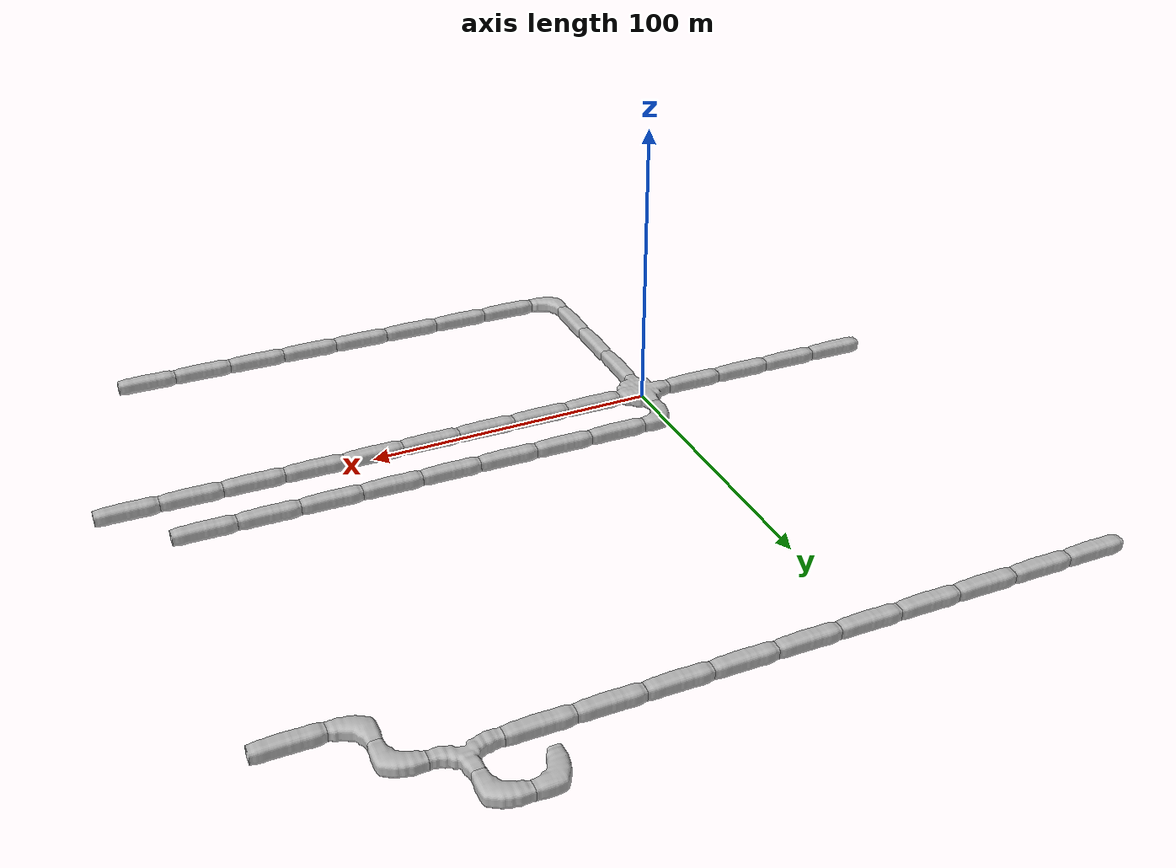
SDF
<sdf version="1.6">
 <world name="cave_8000_2">
  <include>
   <static>true</static>
   <name>cave_0_0</name>
   <pose>0 0 0 0 0 -1.5707963267948966</pose>
   <uri>model://cave_4way_20m</uri>
  </include>
  <include>
   <static>true</static>
   <name>cave_1_0</name>
   <pose>20 0 0 0 0 1.5707963267948966</pose>
   <uri>model://cave_straight_20m</uri>
  </include>
  <include>
   <static>true</static>
   <name>cave_2_0</name>
   <pose>40 0 0 0 0 1.5707963267948966</pose>
   <uri>model://cave_straight_20m</uri>
  </include>
  <include>
   <static>true</static>
   <name>cave_3_0</name>
   <pose>60 0 0 0 0 1.5707963267948966</pose>
   <uri>model://cave_straight_20m</uri>
  </include>
  <include>
   <static>true</static>
   <name>cave_4_0</name>
   <pose>80 0 0 0 0 1.5707963267948966</pose>
   <uri>model://cave_straight_20m</uri>
  </include>
  <include>
   <static>true</static>
   <name>cave_5_0</name>
   <pose>100 0 0 0 0 1.5707963267948966</pose>
   <uri>model://cave_straight_20m</uri>
  </include>
  <include>
   <static>true</static>
   <name>cave_6_0</name>
   <pose>120 0 0 0 0 1.5707963267948966</pose>
   <uri>model://cave_straight_20m</uri>
  </include>
  <include>
   <static>true</static>
   <name>cave_7_0</name>
   <pose>140 0 0 0 0 1.5707963267948966</pose>
   <uri>model://cave_straight_20m</uri>
  </include>
  <include>
   <static>true</static>
   <name>cave_8_0</name>
   <pose>160 0 0 0 0 1.5707963267948966</pose>
   <uri>model://cave_straight_20m</uri>
  </include>
  <include>
   <static>true</static>
   <name>cave_9_0</name>
   <pose>180 0 0 0 0 1.5707963267948966</pose>
   <uri>model://cave_straight_20m</uri>
  </include>
  <include>
   <static>true</static>
   <name>cave_8_6</name>
   <pose>160 120 0 0 0 1.5707963267948966</pose>
   <uri>model://cave_straight_20m</uri>
  </include>
  <include>
   <static>true</static>
   <name>cave_7_6</name>
   <pose>140 120 0 0 0 0.0</pose>
   <uri>model://cave_L_20m</uri>
  </include>
  <include>
   <static>true</static>
   <name>cave_7_7</name>
   <pose>140 140 0 0 0 3.141592653589793</pose>
   <uri>model://cave_L_20m</uri>
  </include>
  <include>
   <static>true</static>
   <name>cave_6_7</name>
   <pose>120 140 0 0 0 0.0</pose>
   <uri>model://cave_3way_20m</uri>
  </include>
  <include>
   <static>true</static>
   <name>cave_5_7</name>
   <pose>100 140 0 0 0 1.5707963267948966</pose>
   <uri>model://cave_straight_20m</uri>
  </include>
  <include>
   <static>true</static>
   <name>cave_4_7</name>
   <pose>80 140 0 0 0 1.5707963267948966</pose>
   <uri>model://cave_straight_20m</uri>
  </include>
  <include>
   <static>true</static>
   <name>cave_3_7</name>
   <pose>60 140 0 0 0 1.5707963267948966</pose>
   <uri>model://cave_straight_20m</uri>
  </include>
  <include>
   <static>true</static>
   <name>cave_2_7</name>
   <pose>40 140 0 0 0 1.5707963267948966</pose>
   <uri>model://cave_straight_20m</uri>
  </include>
  <include>
   <static>true</static>
   <name>cave_1_7</name>
   <pose>20 140 0 0 0 1.5707963267948966</pose>
   <uri>model://cave_straight_20m</uri>
  </include>
  <include>
   <static>true</static>
   <name>cave_0_7</name>
   <pose>0 140 0 0 0 1.5707963267948966</pose>
   <uri>model://cave_straight_20m</uri>
  </include>
  <include>
   <static>true</static>
   <name>cave_-1_7</name>
   <pose>-20 140 0 0 0 1.5707963267948966</pose>
   <uri>model://cave_straight_20m</uri>
  </include>
  <include>
   <static>true</static>
   <name>cave_-2_7</name>
   <pose>-40 140 0 0 0 1.5707963267948966</pose>
   <uri>model://cave_straight_20m</uri>
  </include>
  <include>
   <static>true</static>
   <name>cave_-3_7</name>
   <pose>-60 140 0 0 0 1.5707963267948966</pose>
   <uri>model://cave_straight_20m</uri>
  </include>
  <include>
   <static>true</static>
   <name>cave_-4_7</name>
   <pose>-80 140 0 0 0 1.5707963267948966</pose>
   <uri>model://cave_straight_20m</uri>
  </include>
  <include>
   <static>true</static>
   <name>cave_6_8</name>
   <pose>120 160 0 0 0 3.141592653589793</pose>
   <uri>model://cave_L_20m</uri>
  </include>
  <include>
   <static>true</static>
   <name>cave_5_8</name>
   <pose>100 160 0 0 0 -1.5707963267948966</pose>
   <uri>model://cave_L_20m</uri>
  </include>
  <include>
   <static>true</static>
   <name>cave_0_-1</name>
   <pose>0 -20 0 0 0 0.0</pose>
   <uri>model://cave_straight_20m</uri>
  </include>
  <include>
   <static>true</static>
   <name>cave_0_-2</name>
   <pose>0 -40 0 0 0 0.0</pose>
   <uri>model://cave_straight_20m</uri>
  </include>
  <include>
   <static>true</static>
   <name>cave_0_-3</name>
   <pose>0 -60 0 0 0 0.0</pose>
   <uri>model://cave_straight_20m</uri>
  </include>
  <include>
   <static>true</static>
   <name>cave_0_-4</name>
   <pose>0 -80 0 0 0 0.0</pose>
   <uri>model://cave_L_20m</uri>
  </include>
  <include>
   <static>true</static>
   <name>cave_1_-4</name>
   <pose>20 -80 0 0 0 1.5707963267948966</pose>
   <uri>model://cave_straight_20m</uri>
  </include>
  <include>
   <static>true</static>
   <name>cave_2_-4</name>
   <pose>40 -80 0 0 0 1.5707963267948966</pose>
   <uri>model://cave_straight_20m</uri>
  </include>
  <include>
   <static>true</static>
   <name>cave_3_-4</name>
   <pose>60 -80 0 0 0 1.5707963267948966</pose>
   <uri>model://cave_straight_20m</uri>
  </include>
  <include>
   <static>true</static>
   <name>cave_4_-4</name>
   <pose>80 -80 0 0 0 1.5707963267948966</pose>
   <uri>model://cave_straight_20m</uri>
  </include>
  <include>
   <static>true</static>
   <name>cave_5_-4</name>
   <pose>100 -80 0 0 0 1.5707963267948966</pose>
   <uri>model://cave_straight_20m</uri>
  </include>
  <include>
   <static>true</static>
   <name>cave_6_-4</name>
   <pose>120 -80 0 0 0 1.5707963267948966</pose>
   <uri>model://cave_straight_20m</uri>
  </include>
  <include>
   <static>true</static>
   <name>cave_7_-4</name>
   <pose>140 -80 0 0 0 1.5707963267948966</pose>
   <uri>model://cave_straight_20m</uri>
  </include>
  <include>
   <static>true</static>
   <name>cave_8_-4</name>
   <pose>160 -80 0 0 0 1.5707963267948966</pose>
   <uri>model://cave_straight_20m</uri>
  </include>
  <include>
   <static>true</static>
   <name>cave_-1_0</name>
   <pose>-20 0 0 0 0 1.5707963267948966</pose>
   <uri>model://cave_straight_20m</uri>
  </include>
  <include>
   <static>true</static>
   <name>cave_-2_0</name>
   <pose>-40 0 0 0 0 1.5707963267948966</pose>
   <uri>model://cave_straight_20m</uri>
  </include>
  <include>
   <static>true</static>
   <name>cave_-3_0</name>
   <pose>-60 0 0 0 0 1.5707963267948966</pose>
   <uri>model://cave_straight_20m</uri>
  </include>
  <include>
   <static>true</static>
   <name>cave_-4_0</name>
   <pose>-80 0 0 0 0 1.5707963267948966</pose>
   <uri>model://cave_straight_20m</uri>
  </include>
  <include>
   <static>true</static>
   <name>cave_0_1</name>
   <pose>0 20 0 0 0 -1.5707963267948966</pose>
   <uri>model://cave_L_20m</uri>
  </include>
  <include>
   <static>true</static>
   <name>cave_1_1</name>
   <pose>20 20 0 0 0 1.5707963267948966</pose>
   <uri>model://cave_straight_20m</uri>
  </include>
  <include>
   <static>true</static>
   <name>cave_2_1</name>
   <pose>40 20 0 0 0 1.5707963267948966</pose>
   <uri>model://cave_straight_20m</uri>
  </include>
  <include>
   <static>true</static>
   <name>cave_3_1</name>
   <pose>60 20 0 0 0 1.5707963267948966</pose>
   <uri>model://cave_straight_20m</uri>
  </include>
  <include>
   <static>true</static>
   <name>cave_4_1</name>
   <pose>80 20 0 0 0 1.5707963267948966</pose>
   <uri>model://cave_straight_20m</uri>
  </include>
  <include>
   <static>true</static>
   <name>cave_5_1</name>
   <pose>100 20 0 0 0 1.5707963267948966</pose>
   <uri>model://cave_straight_20m</uri>
  </include>
  <include>
   <static>true</static>
   <name>cave_6_1</name>
   <pose>120 20 0 0 0 1.5707963267948966</pose>
   <uri>model://cave_straight_20m</uri>
  </include>
  <include>
   <static>true</static>
   <name>cave_7_1</name>
   <pose>140 20 0 0 0 1.5707963267948966</pose>
   <uri>model://cave_straight_20m</uri>
  </include>
  <include>
   <static>true</static>
   <name>cave_8_1</name>
   <pose>160 20 0 0 0 1.5707963267948966</pose>
   <uri>model://cave_straight_20m</uri>
  </include>
 </world>
</sdf>
